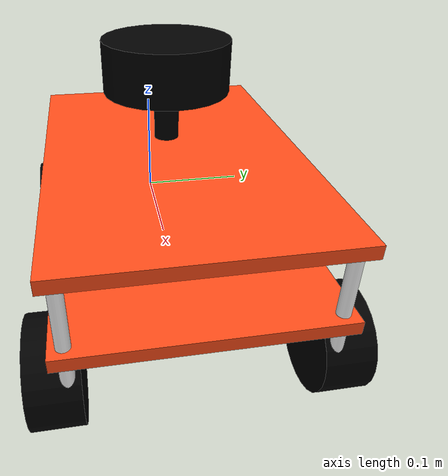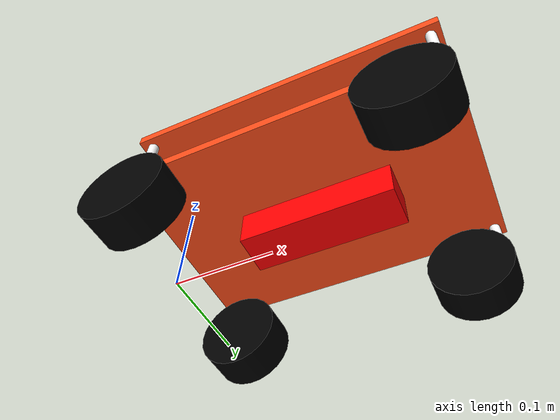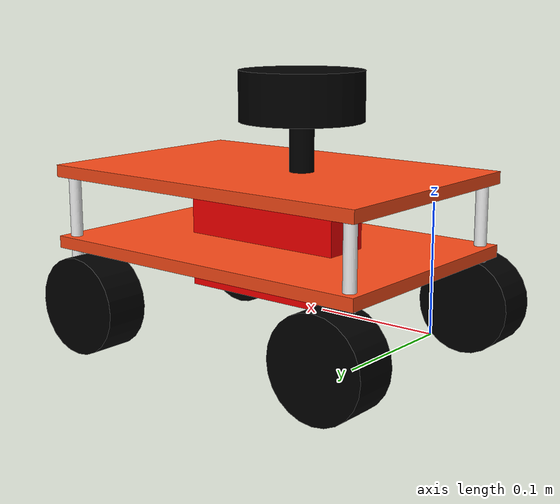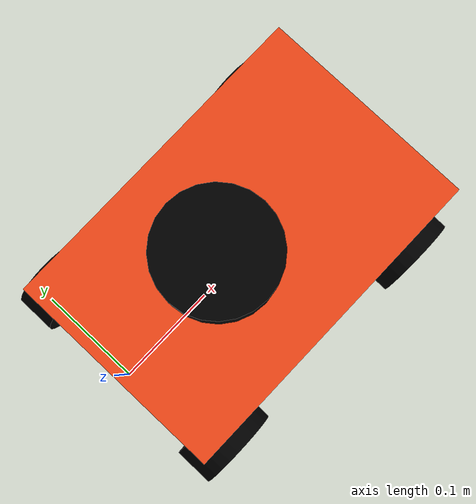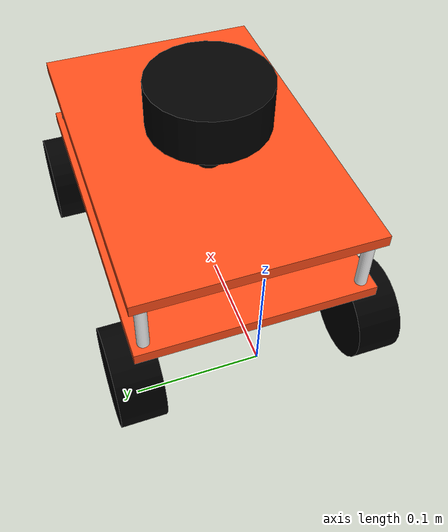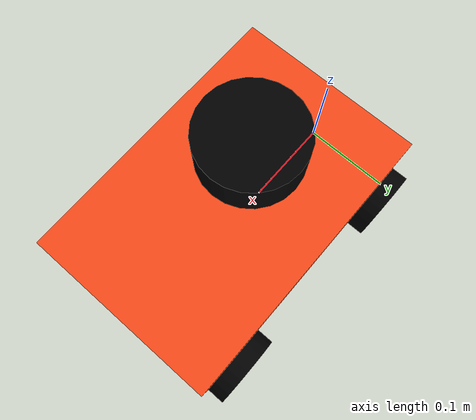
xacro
<?xml version="1.0"?>
<robot xmlns:xacro="http://www.ros.org/wiki/xacro"  name="robot">

    <xacro:arg name="use_ros2_control" default="true"/>
    <xacro:arg name="sim_mode" default="false"/>

    <xacro:include filename="robot_core.xacro" />

    <xacro:if value="$(arg use_ros2_control)">
        <xacro:include filename="ros2_control.xacro" />
    </xacro:if>
    <xacro:unless value="$(arg use_ros2_control)">
        <xacro:include filename="gazebo_control.xacro" />
    </xacro:unless>
    <xacro:include filename="lidar.xacro" />

</robot>

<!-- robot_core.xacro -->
<robot xmlns:xacro="http://www.ros.org/wiki/xacro" >

    <xacro:include filename="inertial_macros.xacro"/>

    <xacro:property name="chassis_length" value="0.30"/>
    <xacro:property name="chassis_width" value="0.20"/>
    <xacro:property name="chassis_height" value="0.01"/>
    <xacro:property name="upper_layer_height" value="0.01"/>
    <xacro:property name="layer_gap" value="0.10"/>
    <xacro:property name="land_to_bottom" value="0.04"/>
    <xacro:property name="total_height" value="0.21"/>
    <xacro:property name="battery_length" value="0.145"/>
    <xacro:property name="battery_width" value="0.04"/>
    <xacro:property name="battery_height" value="0.075"/>
    <xacro:property name="battery_mass" value="0.7"/>
    <xacro:property name="wheel_radius" value="0.04"/>
    <xacro:property name="wheel_thickness" value="0.037"/>
    <xacro:property name="wheel_mass" value="0.095"/>
    <xacro:property name="wheel_offset_x" value="0.05"/>
    <xacro:property name="wheel_offset_y" value="0.10"/>
    <xacro:property name="wheel_offset_z" value="0.01"/>
    <xacro:property name="caster_wheel_radius" value="0.01"/>
    <xacro:property name="caster_wheel_mass" value="0.01"/>
    <xacro:property name="caster_wheel_offset_x" value="0.075"/>
    <xacro:property name="caster_wheel_offset_z" value="${wheel_offset_z - wheel_radius + caster_wheel_radius}"/>

    <material name="white">
        <color rgba="1 1 1 1" />
    </material>

    <material name="orange">
        <color rgba="1 0.3 0.1 1"/>
    </material>

    <material name="blue">
        <color rgba="0.2 0.2 1 1"/>
    </material>

    <material name="black">
        <color rgba="0 0 0 1"/>
    </material>

    <material name="red">
        <color rgba="1 0 0 1"/>
    </material>

    <!-- BASE LINK -->

    <link name="base_link">

    </link>

    <!-- BASE_FOOTPRINT LINK -->

    <joint name="base_footprint_joint" type="fixed">
        <parent link="base_link"/>
        <child link="base_footprint"/>
        <origin xyz="0 0 0" rpy="0 0 0"/>
    </joint>

    <link name="base_footprint">
    </link>

    <!-- Bottom Layer -->
    <link name="bottom_layer">
        <visual>
            <origin xyz="${chassis_length/2} 0 ${land_to_bottom + chassis_height/2}"/>
            <geometry>
                <box size="${chassis_length} ${chassis_width} ${chassis_height}"/>
            </geometry>
            <material name="orange"/>
        </visual>
        <collision>
            <origin xyz="${chassis_length/2} 0 ${land_to_bottom + chassis_height/2}"/>
            <geometry>
                <box size="${chassis_length} ${chassis_width} ${chassis_height}"/>
            </geometry>
        </collision>
        <xacro:inertial_box mass="0.5" x="${chassis_length}" y="${chassis_width}" z="${chassis_height}">
            <origin xyz="${chassis_length/2} 0 ${land_to_bottom + chassis_height/2}" rpy="0 0 0"/>
        </xacro:inertial_box>
    </link>

 <gazebo reference="bottom_layer">
  <material>Gazebo/orange</material>
</gazebo>

    <!-- Upper Layer -->
    <joint name="upper_layer_joint" type="fixed">
        <parent link="bottom_layer"/>
        <child link="upper_layer"/>
        <origin xyz="0 0 ${layer_gap}" rpy="0 0 0"/>
    </joint>
    <link name="upper_layer">
        <visual>
            <origin xyz="${chassis_length/2} 0 ${upper_layer_height/2}"/>
            <geometry>
                <box size="${chassis_length} ${chassis_width} ${upper_layer_height}"/>
            </geometry>
            <material name="orange"/>
        </visual>
        <collision>
            <origin xyz="${chassis_length/2} 0 ${upper_layer_height/2}"/>
            <geometry>
                <box size="${chassis_length} ${chassis_width} ${upper_layer_height}"/>
            </geometry>
        </collision>
        <xacro:inertial_box mass="0.5" x="${chassis_length}" y="${chassis_width}" z="${upper_layer_height}">
            <origin xyz="${chassis_length/2} 0 ${upper_layer_height/2}" rpy="0 0 0"/>
        </xacro:inertial_box>
    </link>
     <gazebo reference="upper_layer">
  <material>Gazebo/Orange</material>
</gazebo>

    <!-- Battery -->
    <joint name="battery_joint" type="fixed">
        <parent link="bottom_layer"/>
        <child link="battery"/>
        <origin xyz="${(chassis_length-battery_length)/2} 0 ${layer_gap-battery_height-0.02}" rpy="0 0 0"/>
    </joint>
    <link name="battery">
        <visual>
            <origin xyz="${battery_length/2} 0 ${battery_height/2}"/>
            <geometry>
                <box size="${battery_length} ${battery_width} ${battery_height}"/>
            </geometry>
            <material name="red"/>
        </visual>
        <collision>
            <origin xyz="${battery_length/2} 0 ${battery_height/2}"/>
            <geometry>
                <box size="${battery_length} ${battery_width} ${battery_height}"/>
            </geometry>
        </collision>
        <xacro:inertial_box mass="${battery_mass}" x="${battery_length}" y="${battery_width}" z="${battery_height}">
            <origin xyz="${battery_length/2} 0 ${battery_height/2}" rpy="0 0 0"/>
        </xacro:inertial_box>
    </link>
     <gazebo reference="battery">
  <material>Gazebo/Yellow</material>
</gazebo>

    <!-- 4 Wheels -->
    <joint name="front_left_wheel_joint" type="continuous">
        <parent link="bottom_layer"/>
        <child link="front_left_wheel"/>
        <origin xyz="0.02 ${wheel_offset_y} 0" rpy="-1.5708 0 0" />
        <axis xyz="0 0 1"/>
    </joint>
    <link name="front_left_wheel">
        <visual>
            <geometry>
                <cylinder radius="${wheel_radius}" length="${wheel_thickness}"/>
            </geometry>
            <material name="black"/>
        </visual>
        <collision>
            <geometry>
                <cylinder radius="${wheel_radius}" length="${wheel_thickness}"/>
            </geometry>
        </collision>
        <xacro:inertial_cylinder mass="${wheel_mass}" length="${wheel_thickness}" radius="${wheel_radius}">
            <origin xyz="0 0 0" rpy="0 0 0"/>
        </xacro:inertial_cylinder>
    </link>
    <joint name="front_right_wheel_joint" type="continuous">
        <parent link="bottom_layer"/>
        <child link="front_right_wheel"/>
        <origin xyz="0.02 -${wheel_offset_y} 0" rpy="1.5708 0 0" />
        <axis xyz="0 0 -1"/>
    </joint>
    <link name="front_right_wheel">
        <visual>
            <geometry>
                <cylinder radius="${wheel_radius}" length="${wheel_thickness}"/>
            </geometry>
            <material name="black"/>
        </visual>
        <collision>
            <geometry>
                <cylinder radius="${wheel_radius}" length="${wheel_thickness}"/>
            </geometry>
        </collision>
        <xacro:inertial_cylinder mass="${wheel_mass}" length="${wheel_thickness}" radius="${wheel_radius}">
            <origin xyz="0 0 0" rpy="0 0 0"/>
        </xacro:inertial_cylinder>
    </link>
    <joint name="rear_left_wheel_joint" type="continuous">
        <parent link="bottom_layer"/>
        <child link="rear_left_wheel"/>
        <origin xyz="0.26 ${wheel_offset_y} 0" rpy="-1.5708 0 0" />
        <axis xyz="0 0 1"/>
    </joint>
    <link name="rear_left_wheel">
        <visual>
            <geometry>
                <cylinder radius="${wheel_radius}" length="${wheel_thickness}"/>
            </geometry>
            <material name="black"/>
        </visual>
        <collision>
            <geometry>
                <cylinder radius="${wheel_radius}" length="${wheel_thickness}"/>
            </geometry>
        </collision>
        <xacro:inertial_cylinder mass="${wheel_mass}" length="${wheel_thickness}" radius="${wheel_radius}">
            <origin xyz="0 0 0" rpy="0 0 0"/>
        </xacro:inertial_cylinder>
    </link>
    <joint name="rear_right_wheel_joint" type="continuous">
        <parent link="bottom_layer"/>
        <child link="rear_right_wheel"/>
        <origin xyz="0.26 -${wheel_offset_y} 0" rpy="1.5708 0 0" />
        <axis xyz="0 0 -1"/>
    </joint>
    <link name="rear_right_wheel">
        <visual>
            <geometry>
                <cylinder radius="${wheel_radius}" length="${wheel_thickness}"/>
            </geometry>
            <material name="black"/>
        </visual>
        <collision>
            <geometry>
                <cylinder radius="${wheel_radius}" length="${wheel_thickness}"/>
            </geometry>
        </collision>
        <xacro:inertial_cylinder mass="${wheel_mass}" length="${wheel_thickness}" radius="${wheel_radius}">
            <origin xyz="0 0 0" rpy="0 0 0"/>
        </xacro:inertial_cylinder>
    </link>

    <!-- Threaded Rods (Spacers) -->
    <xacro:property name="rod_radius" value="0.005"/>
    <xacro:property name="rod_height" value="${layer_gap}"/>
    <!-- Front Left Rod -->
    <joint name="rod_fl_joint" type="fixed">
        <parent link="bottom_layer"/>
        <child link="rod_fl"/>
        <origin xyz="0.01 0.09 0" rpy="0 0 0"/>
    </joint>
    <link name="rod_fl">
        <visual>
            <origin xyz="0 0 ${rod_height/2}"/>
            <geometry>
                <cylinder radius="${rod_radius}" length="${rod_height}"/>
            </geometry>
            <material name="white"/>
        </visual>
    </link>
    <!-- Front Right Rod -->
    <joint name="rod_fr_joint" type="fixed">
        <parent link="bottom_layer"/>
        <child link="rod_fr"/>
        <origin xyz="0.01 -0.09 0" rpy="0 0 0"/>
    </joint>
    <link name="rod_fr">
        <visual>
            <origin xyz="0 0 ${rod_height/2}"/>
            <geometry>
                <cylinder radius="${rod_radius}" length="${rod_height}"/>
            </geometry>
            <material name="white"/>
        </visual>
    </link>
    <!-- Rear Left Rod -->
    <joint name="rod_rl_joint" type="fixed">
        <parent link="bottom_layer"/>
        <child link="rod_rl"/>
        <origin xyz="0.29 0.09 0" rpy="0 0 0"/>
    </joint>
    <link name="rod_rl">
        <visual>
            <origin xyz="0 0 ${rod_height/2}"/>
            <geometry>
                <cylinder radius="${rod_radius}" length="${rod_height}"/>
            </geometry>
            <material name="white"/>
        </visual>
    </link>
    <!-- Rear Right Rod -->
    <joint name="rod_rr_joint" type="fixed">
        <parent link="bottom_layer"/>
        <child link="rod_rr"/>
        <origin xyz="0.29 -0.09 0" rpy="0 0 0"/>
    </joint>
    <link name="rod_rr">
        <visual>
            <origin xyz="0 0 ${rod_height/2}"/>
            <geometry>
                <cylinder radius="${rod_radius}" length="${rod_height}"/>
            </geometry>
            <material name="white"/>
        </visual>
    </link>

    <!-- Connect bottom_layer to base_link -->
    <joint name="bottom_layer_joint" type="fixed">
        <parent link="base_link"/>
        <child link="bottom_layer"/>
        <origin xyz="0 0 0" rpy="0 0 0"/>
    </joint>

</robot>

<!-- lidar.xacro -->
<robot xmlns:xacro="http://www.ros.org/wiki/xacro" >

    <joint name="laser_joint" type="fixed">
        <parent link="upper_layer"/>
        <child link="rplidar_link"/>
        <origin xyz="0.122 0 0.07" rpy="0 0 0"/>
    </joint>

    <link name="rplidar_link">
        <visual>
            <geometry>
                <cylinder radius="0.05" length="0.04"/>
            </geometry>
            <material name="black"/>
        </visual>
        <visual>
            <origin xyz="0 0 -0.05"/>
            <geometry>
                <cylinder radius="0.01" length="0.1"/>
            </geometry>
            <material name="black"/>
        </visual>
        <collision>
            <geometry>
                <cylinder radius="0.05" length="0.04"/>
            </geometry>
        </collision>
        <xacro:inertial_cylinder mass="0.1" length="0.04" radius="0.05">
            <origin xyz="0 0 0" rpy="0 0 0"/>
        </xacro:inertial_cylinder>
    </link>

    <gazebo reference="rplidar_link">
        <material>Gazebo/Black</material>
        <sensor name="laser" type="ray">
            <pose> 0 0 0 0 0 0 </pose>
            <visualize>false</visualize>
            <update_rate>10</update_rate>
            <ray>
                <scan>
                    <horizontal>
                        <samples>360</samples>
                        <min_angle>-3.14</min_angle>
                        <max_angle>3.14</max_angle>
                    </horizontal>
                </scan>
                <range>
                    <min>0.3</min>
                    <max>12</max>
                </range>
            </ray>
            <plugin name="laser_controller" filename="libgazebo_ros_ray_sensor.so">
                <ros>
                    <argument>~/out:=scan</argument>
                </ros>
                <output_type>sensor_msgs/LaserScan</output_type>
                <frame_name>rplidar_link</frame_name>
            </plugin>
        </sensor>
    </gazebo>

</robot>
